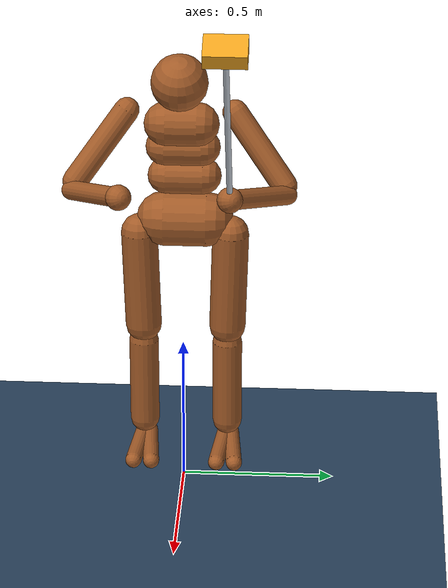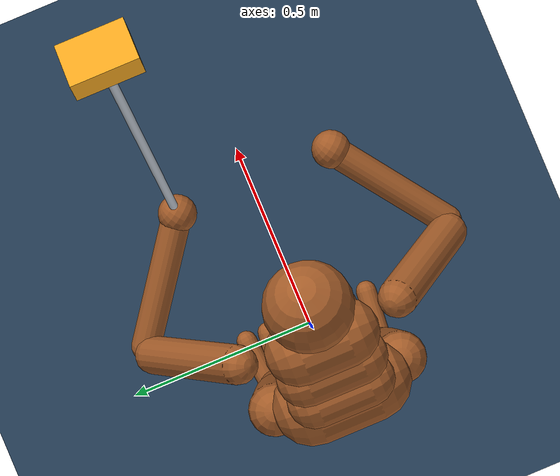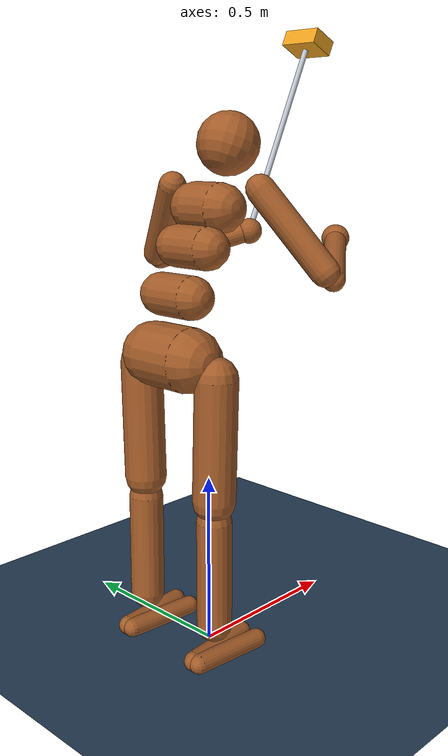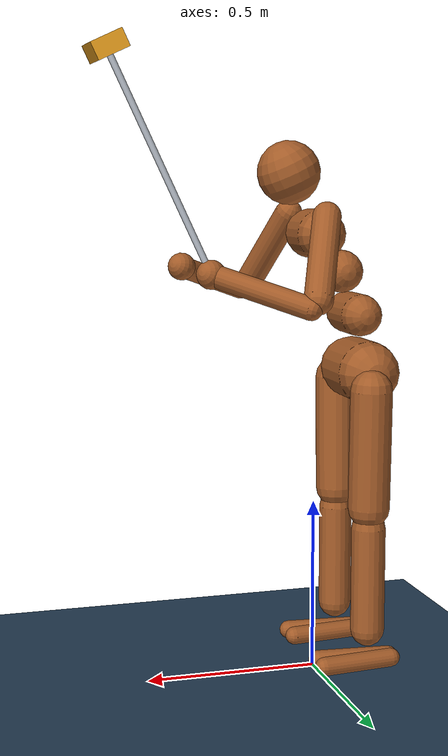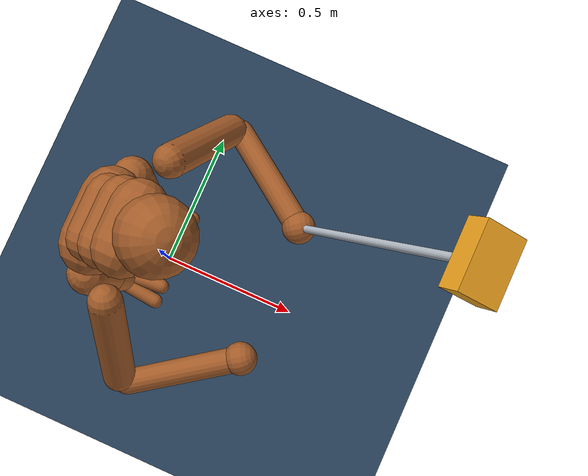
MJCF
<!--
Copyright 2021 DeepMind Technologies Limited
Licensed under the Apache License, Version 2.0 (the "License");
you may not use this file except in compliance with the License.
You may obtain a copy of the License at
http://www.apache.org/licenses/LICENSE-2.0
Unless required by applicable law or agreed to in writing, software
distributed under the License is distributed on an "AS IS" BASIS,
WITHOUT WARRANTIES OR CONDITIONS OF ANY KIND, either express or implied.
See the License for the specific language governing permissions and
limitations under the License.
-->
<mujoco model="Humanoid">

  <option timestep="0.005" integrator="implicitfast"/>

  <visual>
    <map force="0.1" zfar="30"/>
    <rgba haze="0.15 0.25 0.35 1"/>
    <global offwidth="2560" offheight="1440" elevation="-20" azimuth="120"/>
  </visual>

  <statistic center="0 0 0.7"/>

  <asset>
    <texture type="skybox" builtin="gradient" rgb1=".3 .5 .7" rgb2="0 0 0" width="32" height="512"/>
    <texture name="body" type="cube" builtin="flat" mark="cross" width="128" height="128" rgb1="0.8 0.6 0.4" rgb2="0.8 0.6 0.4" markrgb="1 1 1"/>
    <material name="body" texture="body" texuniform="true" rgba="0.8 0.6 .4 1"/>
    <texture name="grid" type="2d" builtin="checker" width="512" height="512" rgb1=".1 .2 .3" rgb2=".2 .3 .4"/>
    <material name="grid" texture="grid" texrepeat="1 1" texuniform="true" reflectance=".2"/>
  </asset>

  <default>
    <position kp="150"
              kv="10"
              inheritrange="1"/>

    <default class="body">

      <!-- geoms -->
      <geom type="capsule" condim="1" friction=".7" solimp=".9 .99 .003" solref=".015 1" material="body" group="1"/>
      <default class="thigh">
        <geom size=".06"/>
      </default>
      <default class="shin">
        <geom fromto="0 0 0 0 0 -.3"  size=".049"/>
      </default>
      <default class="foot">
        <geom size=".027"/>
        <default class="foot1">
          <geom fromto="-.07 -.01 0 .14 -.03 0"/>
        </default>
        <default class="foot2">
          <geom fromto="-.07 .01 0 .14  .03 0"/>
        </default>
      </default>
      <default class="arm_upper">
        <geom size=".04"/>
      </default>
      <default class="arm_lower">
        <geom size=".031"/>
      </default>
      <default class="hand">
        <geom type="sphere" size=".04"/>
      </default>

      <!-- joints -->
      <joint type="hinge" damping=".2" stiffness="1" armature=".01" limited="true" solimplimit="0 .99 .01"/>
      <default class="joint_big">
        <joint damping="5" stiffness="10"/>
        <default class="hip_x">
          <joint range="-30 10"/>
        </default>
        <default class="hip_z">
          <joint range="-60 35"/>
        </default>
        <default class="hip_y">
          <joint axis="0 1 0" range="-150 20"/>
        </default>
        <default class="joint_big_stiff">
          <joint stiffness="20"/>
        </default>
      </default>
      <default class="knee">
        <joint pos="0 0 .02" axis="0 -1 0" range="-160 2"/>
      </default>
      <default class="ankle">
        <joint range="-50 50"/>
        <default class="ankle_y">
          <joint pos="0 0 .08" axis="0 1 0" stiffness="6"/>
        </default>
        <default class="ankle_x">
          <joint pos="0 0 .04" stiffness="3"/>
        </default>
      </default>
      <default class="shoulder">
        <joint range="-85 60"/>
      </default>
      <default class="elbow">
        <joint range="-100 50" stiffness="0"/>
      </default>
    </default>
  </default>

  <worldbody>
    <geom name="floor" size="0 0 .05" type="plane" material="grid" condim="3"/>
    <light name="spotlight" mode="targetbodycom" target="torso" diffuse=".8 .8 .8" specular="0.3 0.3 0.3" pos="0 -6 4" cutoff="30"/>
    <light name="top" pos="0 0 2" mode="trackcom"/>
    <body name="torso" pos="0 0 1.282" childclass="body" euler="0 25 0">
      <camera name="back" pos="-3 0 1" xyaxes="0 -1 0 1 0 2" mode="trackcom"/>
      <camera name="side" pos="0 -3 1" xyaxes="1 0 0 0 1 2" mode="trackcom"/>
      <freejoint name="root"/>
      <geom name="torso" fromto="0 -.05 0 0 .05 0" size=".07"/>
      <geom name="waist_upper" fromto="-.01 -.06 -.12 -.01 .06 -.12" size=".06"/>
      <body name="head" pos="0 0 .19">
        <geom name="head" type="sphere" size=".09"/>
        <camera name="egocentric" pos=".09 0 0" xyaxes="0 -1 0 .1 0 1" fovy="80"/>
      </body>
      <body name="waist_lower" pos="-.01 0 -.26" euler="0 -25 0">
        <geom name="waist_lower" fromto="0 -.06 0 0 .06 0" size=".06"/>
        <joint name="abdomen_z" pos="0 0 .065" axis="0 0 1" range="-45 45" class="joint_big_stiff"/>
        <joint name="abdomen_y" pos="0 0 .065" axis="0 1 0" range="-75 30" class="joint_big"/>
        <body name="pelvis" pos="0 0 -.165">
          <joint name="abdomen_x" pos="0 0 .1" axis="1 0 0" range="-35 35" class="joint_big"/>
          <geom name="butt" fromto="-.02 -.07 0 -.02 .07 0" size=".09"/>
          <body name="thigh_right" pos="0 -.15 -.04">
            <geom name="thigh_right" fromto="0 0 0 0 .01 -.34" class="thigh"/>
            <body name="shin_right" pos="0 .01 -.4">
              <geom name="shin_right" class="shin"/>
              <body name="foot_right" pos="0 0 -.39">
                <geom name="foot1_right" class="foot1"/>
                <geom name="foot2_right" class="foot2"/>
              </body>
            </body>
          </body>
          <body name="thigh_left" pos="0 .15 -.04">
            <geom name="thigh_left" fromto="0 0 0 0 -.01 -.34" class="thigh"/>
            <body name="shin_left" pos="0 -.01 -.4">
              <geom name="shin_left" fromto="0 0 0 0 0 -.3" class="shin"/>
              <body name="foot_left" pos="0 0 -.39">
                <geom name="foot1_left" class="foot1"/>
                <geom name="foot2_left" class="foot2"/>
              </body>
            </body>
          </body>
        </body>
      </body>
      <body name="upper_arm_right" pos="0 -.17 .06">
        <joint name="shoulder1_right" axis="2 1 1"  class="shoulder"/>
        <joint name="shoulder2_right" axis="0 -1 1" class="shoulder"/>
        <geom name="upper_arm_right" fromto="0 0 0 .16 -.16 -.16" class="arm_upper"/>
        <body name="lower_arm_right" pos=".18 -.18 -.18">
          <joint name="elbow_right" axis="0 -1 1" class="elbow"/>
          <geom name="lower_arm_right" fromto=".01 .01 .01 .17 .17 .17" class="arm_lower"/>
          <body name="hand_right" pos=".18 .18 .18">
            <joint name="pulso_right" axis="0 1 0" range="-100 100" damping="0.08" frictionloss="0.02"/>
            <geom name="hand_right" zaxis="1 1 1" class="hand"/>
            <site name="grip_hand_right" pos="0 0 0" size="0.015" rgba="0 0 1 1"/>
          </body>
        </body>
      </body>
      <body name="upper_arm_left" pos="0 .17 .06">
        <joint name="shoulder1_left" axis="-2 1 -1" class="shoulder"/>
        <joint name="shoulder2_left" axis="0 -1 -1"  class="shoulder"/>
        <geom name="upper_arm_left" fromto="0 0 0 .16 .16 -.16" class="arm_upper"/>
        <body name="lower_arm_left" pos=".18 .18 -.18">
          <joint name="elbow_left" axis="0 -1 -1" class="elbow"/>
          <geom name="lower_arm_left" fromto=".01 -.01 .01 .17 -.17 .17" class="arm_lower"/>
          <body name="hand_left" pos=".18 -.18 .18">
            <joint name="pulso_left" axis="0 1 0" range="-100 100" damping="0.08" frictionloss="0.02"/>
            <geom name="hand_left" zaxis="1 1 1" class="hand"/>
            <geom name="haste" type="capsule" fromto="0 0 0 0 0 0.65" size="0.009" mass="0.12" rgba="0.75 0.78 0.82 1"/>
            <site name="grip_right" pos="0 0 0" size="0.015" rgba="0 1 0 1"/>
            <geom name="cabeca_taco" type="box" pos="0 0 0.65" euler="0 0 0" size="0.045 0.065 0.025" mass="0.20" rgba="0.95 0.65 0.12 1" contype="1" conaffinity="2" friction="0.4 0.005 0.001" solref="0.001 0.7" solimp="0.95 0.99 0.001"/>
            <site name="ponta_taco" pos="0 0 0.65" size="0.012" rgba="1 0.3 0.1 1"/>
          </body>
        </body>
      </body>
    </body>
  </worldbody>

  <contact>
     <!-- Preensao ideal: ignorar colisao das formas solidas na zona da pega. -->
    <exclude body1="hand_right" body2="hand_left"/>
    <exclude body1="lower_arm_right" body2="hand_left"/>
    <exclude body1="waist_lower" body2="thigh_right"/>
    <exclude body1="waist_lower" body2="thigh_left"/>
  </contact>

  <actuator>
    <position name="abdomen_z" joint="abdomen_z"/>
    <position name="abdomen_y" joint="abdomen_y"/>
    <position name="abdomen_x" joint="abdomen_x"/>

    <position name="shoulder1_right" joint="shoulder1_right"/>
    <position name="shoulder2_right" joint="shoulder2_right"/>
    <position name="elbow_right" joint="elbow_right"/>
    <position name="pulso_right" joint="pulso_right"/>

    <position name="shoulder1_left" joint="shoulder1_left"/>
    <position name="shoulder2_left" joint="shoulder2_left"/>
    <position name="elbow_left" joint="elbow_left"/>
    <position name="pulso_left" joint="pulso_left"/>
</actuator>

  <equality>

    <!-- mantém a pelvis fixa -->
    <weld body1="pelvis"/>

    <!-- mão direita agarrada ao taco -->
    <weld site1="grip_hand_right" site2="grip_right"/>

</equality>

</mujoco>
